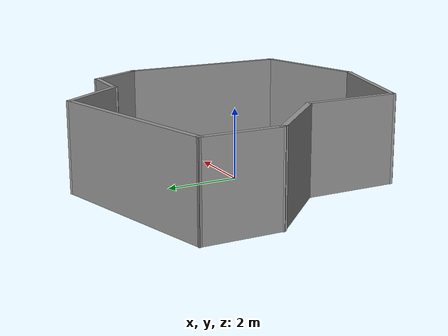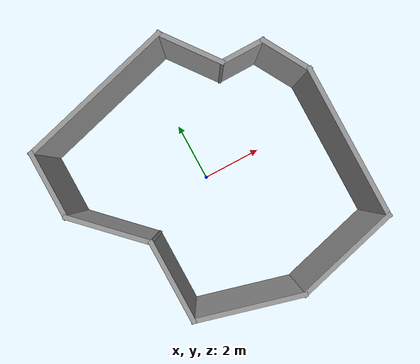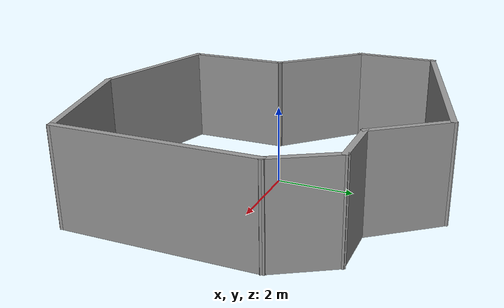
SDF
<?xml version='1.0'?>
<sdf version='1.6'>
  <model name='small_custom_room'>
    <pose frame=''>-0.015194 -0.007674 0 0 -0 0</pose>
    <link name='Wall_0'>
      <collision name='Wall_0_Collision'>
        <geometry>
          <box>
            <size>2.75 0.15 2.5</size>
          </box>
        </geometry>
        <pose frame=''>0 0 1.25 0 -0 0</pose>
      </collision>
      <visual name='Wall_0_Visual'>
        <pose frame=''>0 0 1.25 0 -0 0</pose>
        <geometry>
          <box>
            <size>2.75 0.15 2.5</size>
          </box>
        </geometry>
        <material>
          <script>
            <uri>file://media/materials/scripts/gazebo.material</uri>
            <name>Gazebo/Grey</name>
          </script>
          <ambient>1 1 1 1</ambient>
        </material>
        <meta>
          <layer>0</layer>
        </meta>
      </visual>
      <pose frame=''>-2.31481 -2.20233 0 0 -0 1.5708</pose>
    </link>
    <link name='Wall_11'>
      <collision name='Wall_11_Collision'>
        <geometry>
          <box>
            <size>2.75 0.15 2.5</size>
          </box>
        </geometry>
        <pose frame=''>0 0 1.25 0 -0 0</pose>
      </collision>
      <visual name='Wall_11_Visual'>
        <pose frame=''>0 0 1.25 0 -0 0</pose>
        <geometry>
          <box>
            <size>2.75 0.15 2.5</size>
          </box>
        </geometry>
        <material>
          <script>
            <uri>file://media/materials/scripts/gazebo.material</uri>
            <name>Gazebo/Grey</name>
          </script>
          <ambient>1 1 1 1</ambient>
        </material>
        <meta>
          <layer>0</layer>
        </meta>
      </visual>
      <pose frame=''>-3.23404 0.016913 0 0 -0 2.35619</pose>
    </link>
    <link name='Wall_12'>
      <collision name='Wall_12_Collision'>
        <geometry>
          <box>
            <size>2.25 0.15 2.5</size>
          </box>
        </geometry>
        <pose frame=''>0 0 1.25 0 -0 0</pose>
      </collision>
      <visual name='Wall_12_Visual'>
        <pose frame=''>0 0 1.25 0 -0 0</pose>
        <geometry>
          <box>
            <size>2.25 0.15 2.5</size>
          </box>
        </geometry>
        <material>
          <script>
            <uri>file://media/materials/scripts/gazebo.material</uri>
            <name>Gazebo/Grey</name>
          </script>
          <ambient>1 1 1 1</ambient>
        </material>
        <meta>
          <layer>0</layer>
        </meta>
      </visual>
      <pose frame=''>-4.15328 1.98615 0 0 -0 1.5708</pose>
    </link>
    <link name='Wall_13'>
      <collision name='Wall_13_Collision'>
        <geometry>
          <box>
            <size>5.25 0.15 2.5</size>
          </box>
        </geometry>
        <pose frame=''>0 0 1.25 0 -0 0</pose>
      </collision>
      <visual name='Wall_13_Visual'>
        <pose frame=''>0 0 1.25 0 -0 0</pose>
        <geometry>
          <box>
            <size>5.25 0.15 2.5</size>
          </box>
        </geometry>
        <material>
          <script>
            <uri>file://media/materials/scripts/gazebo.material</uri>
            <name>Gazebo/Grey</name>
          </script>
          <ambient>1 1 1 1</ambient>
        </material>
        <meta>
          <layer>0</layer>
        </meta>
      </visual>
      <pose frame=''>-1.69017 3.69614 0 0 -0 0.261799</pose>
    </link>
    <link name='Wall_14'>
      <collision name='Wall_14_Collision'>
        <geometry>
          <box>
            <size>2.18867 0.15 2.5</size>
          </box>
        </geometry>
        <pose frame=''>0 0 1.25 0 -0 0</pose>
      </collision>
      <visual name='Wall_14_Visual'>
        <pose frame=''>0 0 1.25 0 -0 0</pose>
        <geometry>
          <box>
            <size>2.18867 0.15 2.5</size>
          </box>
        </geometry>
        <material>
          <script>
            <uri>file://media/materials/scripts/gazebo.material</uri>
            <name>Gazebo/Grey</name>
          </script>
          <ambient>1 1 1 1</ambient>
        </material>
        <meta>
          <layer>0</layer>
        </meta>
      </visual>
      <pose frame=''>1.38992 3.54472 0 0 -0 -0.920684</pose>
    </link>
    <link name='Wall_5'>
      <collision name='Wall_5_Collision'>
        <geometry>
          <box>
            <size>3.5 0.15 2.5</size>
          </box>
        </geometry>
        <pose frame=''>0 0 1.25 0 -0 0</pose>
      </collision>
      <visual name='Wall_5_Visual'>
        <pose frame=''>0 0 1.25 0 -0 0</pose>
        <geometry>
          <box>
            <size>3.5 0.15 2.5</size>
          </box>
        </geometry>
        <material>
          <script>
            <uri>file://media/materials/scripts/gazebo.material</uri>
            <name>Gazebo/Grey</name>
          </script>
          <ambient>1 1 1 1</ambient>
        </material>
        <meta>
          <layer>0</layer>
        </meta>
      </visual>
      <pose frame=''>-0.69688 -3.93585 0 0 -0 -0.261799</pose>
    </link>
    <link name='Wall_6'>
      <collision name='Wall_6_Collision'>
        <geometry>
          <box>
            <size>3.5 0.15 2.5</size>
          </box>
        </geometry>
        <pose frame=''>0 0 1.25 0 -0 0</pose>
      </collision>
      <visual name='Wall_6_Visual'>
        <pose frame=''>0 0 1.25 0 -0 0</pose>
        <geometry>
          <box>
            <size>3.5 0.15 2.5</size>
          </box>
        </geometry>
        <material>
          <script>
            <uri>file://media/materials/scripts/gazebo.material</uri>
            <name>Gazebo/Grey</name>
          </script>
          <ambient>1 1 1 1</ambient>
        </material>
        <meta>
          <layer>0</layer>
        </meta>
      </visual>
      <pose frame=''>2.53897 -3.93585 0 0 -0 0.261799</pose>
    </link>
    <link name='Wall_7'>
      <collision name='Wall_7_Collision'>
        <geometry>
          <box>
            <size>5 0.15 2.5</size>
          </box>
        </geometry>
        <pose frame=''>0 0 1.25 0 -0 0</pose>
      </collision>
      <visual name='Wall_7_Visual'>
        <pose frame=''>0 0 1.25 0 -0 0</pose>
        <geometry>
          <box>
            <size>5 0.15 2.5</size>
          </box>
        </geometry>
        <material>
          <script>
            <uri>file://media/materials/scripts/gazebo.material</uri>
            <name>Gazebo/Grey</name>
          </script>
          <ambient>1 1 1 1</ambient>
        </material>
        <meta>
          <layer>0</layer>
        </meta>
      </visual>
      <pose frame=''>4.1569 -1.07733 0 0 -0 1.5708</pose>
    </link>
    <link name='Wall_8'>
      <collision name='Wall_8_Collision'>
        <geometry>
          <box>
            <size>1.75 0.15 2.5</size>
          </box>
        </geometry>
        <pose frame=''>0 0 1.25 0 -0 0</pose>
      </collision>
      <visual name='Wall_8_Visual'>
        <pose frame=''>0 0 1.25 0 -0 0</pose>
        <geometry>
          <box>
            <size>1.75 0.15 2.5</size>
          </box>
        </geometry>
        <material>
          <script>
            <uri>file://media/materials/scripts/gazebo.material</uri>
            <name>Gazebo/Grey</name>
          </script>
          <ambient>1 1 1 1</ambient>
        </material>
        <meta>
          <layer>0</layer>
        </meta>
      </visual>
      <pose frame=''>3.7569 2.04049 0 0 -0 2.0944</pose>
    </link>
    <link name='Wall_9'>
      <collision name='Wall_9_Collision'>
        <geometry>
          <box>
            <size>1.5 0.15 2.5</size>
          </box>
        </geometry>
        <pose frame=''>0 0 1.25 0 -0 0</pose>
      </collision>
      <visual name='Wall_9_Visual'>
        <pose frame=''>0 0 1.25 0 -0 0</pose>
        <geometry>
          <box>
            <size>1.5 0.15 2.5</size>
          </box>
        </geometry>
        <material>
          <script>
            <uri>file://media/materials/scripts/gazebo.material</uri>
            <name>Gazebo/Grey</name>
          </script>
          <ambient>1 1 1 1</ambient>
        </material>
        <meta>
          <layer>0</layer>
        </meta>
      </visual>
      <pose frame=''>2.6819 2.73332 0 0 -0 3.14159</pose>
    </link>
    <static>1</static>
  </model>
</sdf>
